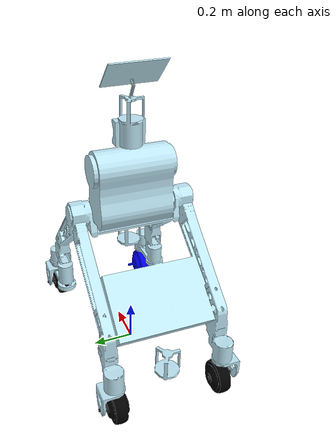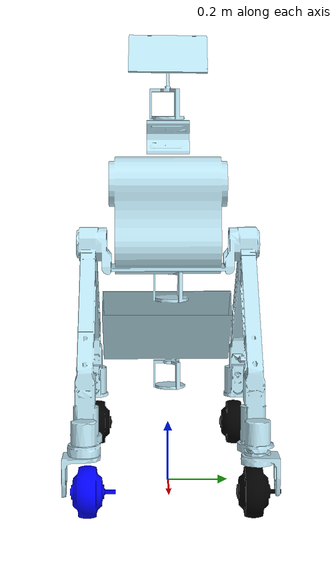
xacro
<?xml version="1.0"?>
<robot xmlns:xacro="http://www.ros.org/wiki/xacro" >

    <xacro:include filename="inertial_macros.xacro"/>

    <xacro:property name="chassis_length" value="0.5"/>
    <xacro:property name="chassis_width" value="0.5"/>
    <xacro:property name="chassis_height" value="0.2"/>
    <xacro:property name="chassis_mass" value="50.0"/>
    <xacro:property name="wheel_radius" value="0.08"/>
    <xacro:property name="wheel_thickness" value="0.03"/>
    <xacro:property name="wheel_mass" value="0.02"/>
    <xacro:property name="wheel_offset_x" value="0.5"/>
     <xacro:property name="wheel_offset_xy" value="0.248"/>
    <xacro:property name="wheel_offset_y" value="0.25227"/>
    <xacro:property name="wheel_offset_z" value="0.09"/>

    <xacro:property name="middle_wheel_offset_x" value="0.0" />
    <xacro:property name="middle_wheel_offset_y" value="0.25227" />

    <material name="white">
        <color rgba="1 1 1 1" />
    </material>

    <material name="orange">
        <color rgba="1 0.3 0.1 1"/>
    </material>

    <material name="blue">
        <color rgba="0.2 0.2 1 1"/>
    </material>

    <material name="black">
        <color rgba="0 0 0 1"/>
    </material>

    <material name="red">
        <color rgba="1 0 0 1"/>
    </material>

    <material name="grey">
      <color rgba="0.5 0.5 0.5 1"/>
    </material>

    <!-- BASE LINK -->

    <link name="base_link">
      <self_collide>false</self_collide>
      <laser_retro>0.0</laser_retro>
    </link>

    <!-- BASE_FOOTPRINT LINK -->

    <joint name="base_footprint_joint" type="fixed">
        <parent link="base_link"/>
        <child link="base_footprint"/>
        <origin xyz="0 0 0" rpy="0 0 0"/>
    </joint>

    <link name="base_footprint">
    </link>

    <!-- CHASSIS LINK -->

    <joint name="chassis_joint" type="fixed">
        <parent link="base_link"/>
        <child link="chassis"/>
        <origin xyz="0 0 0"/>
    </joint>

    <link name="chassis">
        <xacro:inertial_box mass="50" x="${chassis_length}" y="${chassis_width}" z="${chassis_height}">
            <origin xyz="0 0 0" rpy="0 0 0"/>
        </xacro:inertial_box>
        <visual>
        <origin
            xyz="0 0 0"
            rpy="0 0 0" />
        <geometry>
            <mesh
           filename="file://$(find ia_robot_urdf)/meshes/base_link.stl" />
        </geometry>
        <material
            name="">
            <color
            rgba="0.741176470588235 0.901960784313726 0.956862745098039 1" />
        </material>
        </visual>
        <collision>
        <origin
            xyz="0 0 0"
            rpy="0 0 0" />
        <geometry>
            <mesh
           filename="file://$(find ia_robot_urdf)/meshes/base_link.stl" />
        </geometry>
        </collision>
    </link>

    <!-- LEFT WHEEL LINK -->
  <link
    name="lf_wheel_link">
    <inertial>
      <origin
       xyz="0 0 0"
        rpy="0 0 0" />
      <mass
        value="${wheel_mass}" />
      <inertia
        ixx="0.1"
        ixy="0"
        ixz="0"
        iyy="0.1"
        iyz="0"
        izz="0.000456492835033346" />
    </inertial>
    <visual>
      <origin
          xyz="0 0 0"
        rpy="0 0 0" />
      <geometry>
        <mesh
         filename="file://$(find ia_robot_urdf)/meshes/lf_wheel.stl" />
      </geometry>
      <material
        name="">
        <color
          rgba="0 0 0 1" />
      </material>
    </visual>
<collision>
  <origin
    xyz="0 0 0"
    rpy="-1.5708 0 0" />
  <geometry>
    <cylinder
      radius="${wheel_radius}"
      length="${wheel_thickness}" />
  </geometry>
</collision>
  </link>
  <joint
    name="lf_wheel_joint"
     type="fixed">
    <origin
      xyz="${wheel_offset_x} ${wheel_offset_y} ${wheel_offset_z}"
      rpy="0 0 0" />
    <parent
      link="base_link" />
    <child
      link="lf_wheel_link" />
    <axis
      xyz="0 1 0" />
  </joint>
  <link
    name="lb_wheel_link">
    <inertial>
      <origin
        xyz="0 0 0"
        rpy="0 0 0" />
      <mass
        value="${wheel_mass}"  />
      <inertia
        ixx="0.1"
        ixy="0"
        ixz="0"
        iyy="0.1"
        iyz="0"
        izz="0.000456492835033346" />
    </inertial>
    <visual>
      <origin
        xyz="0 0 0"
        rpy="0 0 0" />
      <geometry>
        <mesh
         filename="file://$(find ia_robot_urdf)/meshes/lb_wheel.stl" />
      </geometry>
      <material
        name="">
        <color
          rgba="0 0 0 1" />
      </material>
    </visual>
<collision>
  <origin
    xyz="0 0 0"
    rpy="-1.5708 0 0" />
  <geometry>
    <cylinder
      radius="${wheel_radius}"
      length="${wheel_thickness}" />
  </geometry>
</collision>
  </link>
  <joint
    name="lb_wheel_joint"
    type="fixed">
    <origin
      xyz="-${wheel_offset_x} ${wheel_offset_y} ${wheel_offset_z}"
      rpy="0 0 0" />
    <parent
      link="base_link" />
    <child
      link="lb_wheel_link" />
    <axis
      xyz="0 1 0" />
  </joint>
  <link
    name="rb_wheel_link">
    <inertial>
      <origin
       xyz="0 0 0"
        rpy="0 0 0" />
      <mass
       value="${wheel_mass}"  />
         <inertia
        ixx="0.1"
        ixy="0"
        ixz="0"
        iyy="0.1"
        iyz="0"
        izz="0.000456492835033346" />
    </inertial>
    <visual>
      <origin
          xyz="0 0 0"
        rpy="0 0 0" />
      <geometry>
        <mesh
         filename="file://$(find ia_robot_urdf)/meshes/rb_wheel.stl" />
      </geometry>
      <material
        name="">
        <color
          rgba="0 0 0 1" />
      </material>
    </visual>
<collision>
  <origin
    xyz="0 0 0"
    rpy="-1.5708 0 0" />
  <geometry>
    <cylinder
      radius="${wheel_radius}"
      length="${wheel_thickness}" />
  </geometry>
</collision>
  </link>
  <joint
    name="rb_wheel_joint"
    type="fixed">
    <origin
      xyz="-${wheel_offset_x} -${wheel_offset_y} ${wheel_offset_z}"
      rpy="0 0 0" />
    <parent
      link="base_link" />
    <child
      link="rb_wheel_link" />
    <axis
      xyz="0 1 0" />
  </joint>
  <link
    name="rf_wheel_link">
    <inertial>
      <origin
       xyz="0 0 0"
        rpy="0 0 0" />
      <mass
        value="${wheel_mass}"  />
      <inertia
        ixx="0.1"
        ixy="0"
        ixz="0"
        iyy="0.1"
        iyz="0"
        izz="0.000456492835033346" />
    </inertial>
    <visual>
      <origin
         xyz="0 0 0"
        rpy="0 0 0" />
      <geometry>
        <mesh
         filename="file://$(find ia_robot_urdf)/meshes/rf_wheel.stl" />
      </geometry>
      <material
        name="">
        <color
          rgba="0 0 1 1" />
      </material>
    </visual>
<collision>
  <origin
    xyz="0 0 0"
    rpy="-1.5708 0 0" />
  <geometry>
    <cylinder
      radius="${wheel_radius}"
      length="${wheel_thickness}" />
  </geometry>
</collision>
  </link>
  <joint
    name="rf_wheel_joint"
    type="fixed">
    <origin
      xyz="${wheel_offset_x} -${wheel_offset_y} ${wheel_offset_z}"
      rpy="0 0 0" />
    <parent
      link="base_link" />
    <child
      link="rf_wheel_link" />
    <axis
      xyz="0 1 0" />
  </joint>

  <!-- Left Middle Wheel -->
<link name="lm_wheel_link">
  <inertial>
    <origin xyz="0 0 0" rpy="0 0 0" />
    <mass value="${wheel_mass}" />
    <inertia ixx="0.1" ixy="0" ixz="0" iyy="0.1" iyz="0" izz="0.000456492835033346" />
  </inertial>
  <collision>
    <origin xyz="0 0 0" rpy="-1.5708 0 0" />
    <geometry>
      <cylinder radius="${wheel_radius}" length="${wheel_thickness}" />
    </geometry>
  </collision>
</link>

<joint name="lm_wheel_joint" type="continuous">
  <origin xyz="${middle_wheel_offset_x} ${middle_wheel_offset_y} ${wheel_offset_z}" rpy="0 0 0" />
  <parent link="base_link" />
  <child link="lm_wheel_link" />
  <axis xyz="0 1 0" />
</joint>

<!-- Right Middle Wheel -->
<link name="rm_wheel_link">
  <inertial>
    <origin xyz="0 0 0" rpy="0 0 0" />
    <mass value="${wheel_mass}" />
    <inertia ixx="0.1" ixy="0" ixz="0" iyy="0.1" iyz="0" izz="0.000456492835033346" />
  </inertial>
  <collision>
    <origin xyz="0 0 0" rpy="-1.5708 0 0" />
    <geometry>
      <cylinder radius="${wheel_radius}" length="${wheel_thickness}" />
    </geometry>
  </collision>
</link>

<joint name="rm_wheel_joint" type="continuous">
  <origin xyz="${middle_wheel_offset_x} -${middle_wheel_offset_y} ${wheel_offset_z}" rpy="0 0 0" />
  <parent link="base_link" />
  <child link="rm_wheel_link" />
  <axis xyz="0 1 0" />
</joint>

</robot>
